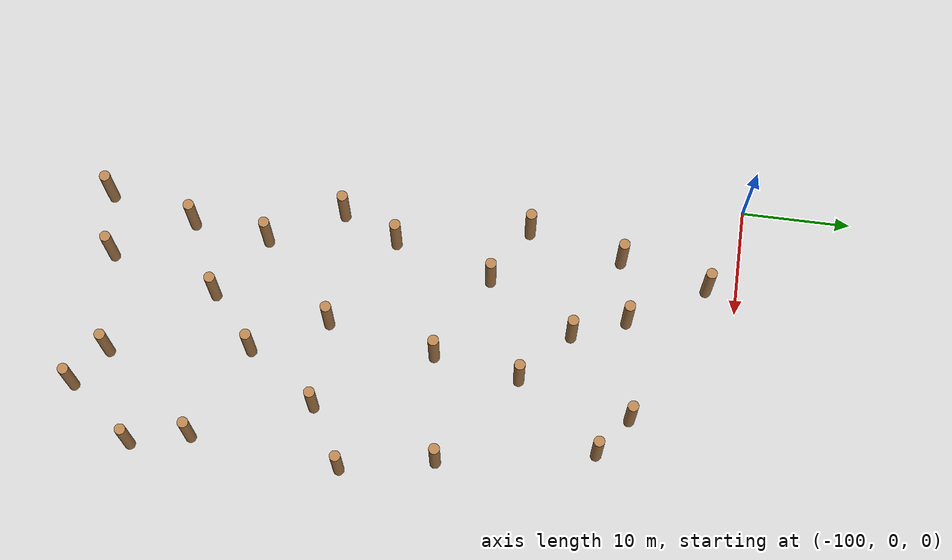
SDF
<sdf version="1.6">
 <world name="default">
  <model name="ground_plane">
   <static>1</static>
   <link name="link">
    <collision name="collision">
     <geometry><plane><normal>0 0 1</normal><size>100 100</size></plane></geometry>
     <surface><friction><ode><mu>100</mu><mu2>50</mu2></ode></friction></surface>
    </collision>
    <visual name="visual">
     <cast_shadows>0</cast_shadows>
     <geometry><plane><normal>0 0 1</normal><size>100 100</size></plane></geometry>
     <material>
      <script><uri>file://media/materials/scripts/gazebo.material</uri><name>Gazebo/Grey</name></script>
     </material>
    </visual>
   </link>
  </model>
  <model name="WoodPillars_10">
   <link name="link">
    <inertial>
     <mass>1</mass>
     <inertia><ixx>0.145833</ixx><ixy>0</ixy><ixz>0</ixz><iyy>0.145833</iyy><iyz>0</iyz><izz>0.125</izz></inertia>
    </inertial>
    <visual name="visual">
     <geometry><cylinder><radius>0.5</radius><length>5.50507</length></cylinder></geometry>
     <material>
      <script><name>Gazebo/Wood</name><uri>file://media/materials/scripts/gazebo.material</uri></script>
     </material>
    </visual>
    <collision name="collision">
     <geometry><cylinder><radius>0.5</radius><length>5.50507</length></cylinder></geometry>
     <surface>
      <friction>
       <ode><mu>1</mu><mu2>1</mu2><fdir1>0 0 0</fdir1><slip1>0</slip1><slip2>0</slip2></ode>
       <torsional>
        <coefficient>1</coefficient>
        <patch_radius>0</patch_radius>
        <surface_radius>0</surface_radius>
        <use_patch_radius>1</use_patch_radius>
        <ode><slip>0</slip></ode>
       </torsional>
      </friction>
      <bounce><restitution_coefficient>0</restitution_coefficient><threshold>1e+06</threshold></bounce>
      <contact>
       <collide_without_contact>0</collide_without_contact>
       <collide_without_contact_bitmask>1</collide_without_contact_bitmask>
       <collide_bitmask>1</collide_bitmask>
       <ode>
        <soft_cfm>0</soft_cfm>
        <soft_erp>0.2</soft_erp>
        <kp>1e+13</kp>
        <kd>1</kd>
        <max_vel>0.01</max_vel>
        <min_depth>0</min_depth>
       </ode>
       <bullet>
        <split_impulse>1</split_impulse>
        <split_impulse_penetration_threshold>-0.01</split_impulse_penetration_threshold>
        <soft_cfm>0</soft_cfm>
        <soft_erp>0.2</soft_erp>
        <kp>1e+13</kp>
        <kd>1</kd>
       </bullet>
      </contact>
     </surface>
    </collision>
   </link>
   <link name="link_clone">
    <inertial>
     <mass>1</mass>
     <inertia><ixx>0.145833</ixx><ixy>0</ixy><ixz>0</ixz><iyy>0.145833</iyy><iyz>0</iyz><izz>0.125</izz></inertia>
    </inertial>
    <pose>17.6954 -2.91348 -2e-06 0 -0 -0.001289</pose>
    <visual name="visual">
     <geometry><cylinder><radius>0.5</radius><length>5.50507</length></cylinder></geometry>
     <material>
      <script><name>Gazebo/Wood</name><uri>file://media/materials/scripts/gazebo.material</uri></script>
      <shader type="pixel"/>
     </material>
    </visual>
    <collision name="collision">
     <geometry><cylinder><radius>0.5</radius><length>5.50507</length></cylinder></geometry>
     <surface>
      <friction>
       <ode><mu>1</mu><mu2>1</mu2><fdir1>0 0 0</fdir1><slip1>0</slip1><slip2>0</slip2></ode>
       <torsional>
        <coefficient>1</coefficient>
        <patch_radius>0</patch_radius>
        <surface_radius>0</surface_radius>
        <use_patch_radius>1</use_patch_radius>
        <ode><slip>0</slip></ode>
       </torsional>
      </friction>
      <bounce><restitution_coefficient>0</restitution_coefficient><threshold>1e+06</threshold></bounce>
      <contact>
       <collide_without_contact>0</collide_without_contact>
       <collide_without_contact_bitmask>1</collide_without_contact_bitmask>
       <collide_bitmask>1</collide_bitmask>
       <ode>
        <soft_cfm>0</soft_cfm>
        <soft_erp>0.2</soft_erp>
        <kp>1e+13</kp>
        <kd>1</kd>
        <max_vel>0.01</max_vel>
        <min_depth>0</min_depth>
       </ode>
       <bullet>
        <split_impulse>1</split_impulse>
        <split_impulse_penetration_threshold>-0.01</split_impulse_penetration_threshold>
        <soft_cfm>0</soft_cfm>
        <soft_erp>0.2</soft_erp>
        <kp>1e+13</kp>
        <kd>1</kd>
       </bullet>
      </contact>
     </surface>
    </collision>
   </link>
   <link name="link_clone_10">
    <inertial>
     <mass>1</mass>
     <inertia><ixx>0.145833</ixx><ixy>0</ixy><ixz>0</ixz><iyy>0.145833</iyy><iyz>0</iyz><izz>0.125</izz></inertia>
    </inertial>
    <pose>2.50237 12.8939 0 0 -0 -0.001289</pose>
    <visual name="visual">
     <geometry><cylinder><radius>0.5</radius><length>5.50507</length></cylinder></geometry>
     <material>
      <script><name>Gazebo/Wood</name><uri>file://media/materials/scripts/gazebo.material</uri></script>
      <shader type="pixel"/>
     </material>
    </visual>
    <collision name="collision">
     <geometry><cylinder><radius>0.5</radius><length>5.50507</length></cylinder></geometry>
     <surface>
      <friction>
       <ode><mu>1</mu><mu2>1</mu2><fdir1>0 0 0</fdir1><slip1>0</slip1><slip2>0</slip2></ode>
       <torsional>
        <coefficient>1</coefficient>
        <patch_radius>0</patch_radius>
        <surface_radius>0</surface_radius>
        <use_patch_radius>1</use_patch_radius>
        <ode><slip>0</slip></ode>
       </torsional>
      </friction>
      <bounce><restitution_coefficient>0</restitution_coefficient><threshold>1e+06</threshold></bounce>
      <contact>
       <collide_without_contact>0</collide_without_contact>
       <collide_without_contact_bitmask>1</collide_without_contact_bitmask>
       <collide_bitmask>1</collide_bitmask>
       <ode>
        <soft_cfm>0</soft_cfm>
        <soft_erp>0.2</soft_erp>
        <kp>1e+13</kp>
        <kd>1</kd>
        <max_vel>0.01</max_vel>
        <min_depth>0</min_depth>
       </ode>
       <bullet>
        <split_impulse>1</split_impulse>
        <split_impulse_penetration_threshold>-0.01</split_impulse_penetration_threshold>
        <soft_cfm>0</soft_cfm>
        <soft_erp>0.2</soft_erp>
        <kp>1e+13</kp>
        <kd>1</kd>
       </bullet>
      </contact>
     </surface>
    </collision>
   </link>
   <link name="link_clone_14">
    <inertial>
     <mass>1</mass>
     <inertia><ixx>0.145833</ixx><ixy>0</ixy><ixz>0</ixz><iyy>0.145833</iyy><iyz>0</iyz><izz>0.125</izz></inertia>
    </inertial>
    <pose>9.31461 -20.9997 -1e-06 0 -0 -0.001289</pose>
    <visual name="visual">
     <geometry><cylinder><radius>0.5</radius><length>5.50507</length></cylinder></geometry>
     <material>
      <script><name>Gazebo/Wood</name><uri>file://media/materials/scripts/gazebo.material</uri></script>
      <shader type="pixel"/>
     </material>
    </visual>
    <collision name="collision">
     <geometry><cylinder><radius>0.5</radius><length>5.50507</length></cylinder></geometry>
     <surface>
      <friction>
       <ode><mu>1</mu><mu2>1</mu2><fdir1>0 0 0</fdir1><slip1>0</slip1><slip2>0</slip2></ode>
       <torsional>
        <coefficient>1</coefficient>
        <patch_radius>0</patch_radius>
        <surface_radius>0</surface_radius>
        <use_patch_radius>1</use_patch_radius>
        <ode><slip>0</slip></ode>
       </torsional>
      </friction>
      <bounce><restitution_coefficient>0</restitution_coefficient><threshold>1e+06</threshold></bounce>
      <contact>
       <collide_without_contact>0</collide_without_contact>
       <collide_without_contact_bitmask>1</collide_without_contact_bitmask>
       <collide_bitmask>1</collide_bitmask>
       <ode>
        <soft_cfm>0</soft_cfm>
        <soft_erp>0.2</soft_erp>
        <kp>1e+13</kp>
        <kd>1</kd>
        <max_vel>0.01</max_vel>
        <min_depth>0</min_depth>
       </ode>
       <bullet>
        <split_impulse>1</split_impulse>
        <split_impulse_penetration_threshold>-0.01</split_impulse_penetration_threshold>
        <soft_cfm>0</soft_cfm>
        <soft_erp>0.2</soft_erp>
        <kp>1e+13</kp>
        <kd>1</kd>
       </bullet>
      </contact>
     </surface>
    </collision>
   </link>
   <link name="link_clone_15">
    <inertial>
     <mass>1</mass>
     <inertia><ixx>0.145833</ixx><ixy>0</ixy><ixz>0</ixz><iyy>0.145833</iyy><iyz>0</iyz><izz>0.125</izz></inertia>
    </inertial>
    <pose>17.9894 -25.1945 -2e-06 0 -0 -0.001289</pose>
    <visual name="visual">
     <geometry><cylinder><radius>0.5</radius><length>5.50507</length></cylinder></geometry>
     <material>
      <script><name>Gazebo/Wood</name><uri>file://media/materials/scripts/gazebo.material</uri></script>
      <shader type="pixel"/>
     </material>
    </visual>
    <collision name="collision">
     <geometry><cylinder><radius>0.5</radius><length>5.50507</length></cylinder></geometry>
     <surface>
      <friction>
       <ode><mu>1</mu><mu2>1</mu2><fdir1>0 0 0</fdir1><slip1>0</slip1><slip2>0</slip2></ode>
       <torsional>
        <coefficient>1</coefficient>
        <patch_radius>0</patch_radius>
        <surface_radius>0</surface_radius>
        <use_patch_radius>1</use_patch_radius>
        <ode><slip>0</slip></ode>
       </torsional>
      </friction>
      <bounce><restitution_coefficient>0</restitution_coefficient><threshold>1e+06</threshold></bounce>
      <contact>
       <collide_without_contact>0</collide_without_contact>
       <collide_without_contact_bitmask>1</collide_without_contact_bitmask>
       <collide_bitmask>1</collide_bitmask>
       <ode>
        <soft_cfm>0</soft_cfm>
        <soft_erp>0.2</soft_erp>
        <kp>1e+13</kp>
        <kd>1</kd>
        <max_vel>0.01</max_vel>
        <min_depth>0</min_depth>
       </ode>
       <bullet>
        <split_impulse>1</split_impulse>
        <split_impulse_penetration_threshold>-0.01</split_impulse_penetration_threshold>
        <soft_cfm>0</soft_cfm>
        <soft_erp>0.2</soft_erp>
        <kp>1e+13</kp>
        <kd>1</kd>
       </bullet>
      </contact>
     </surface>
    </collision>
   </link>
   <link name="link_clone_17">
    <inertial>
     <mass>1</mass>
     <inertia><ixx>0.145833</ixx><ixy>0</ixy><ixz>0</ixz><iyy>0.145833</iyy><iyz>0</iyz><izz>0.125</izz></inertia>
    </inertial>
    <pose>19.3784 -11.4604 -2e-06 0 -0 -0.001289</pose>
    <visual name="visual">
     <geometry><cylinder><radius>0.5</radius><length>5.50507</length></cylinder></geometry>
     <material>
      <script><name>Gazebo/Wood</name><uri>file://media/materials/scripts/gazebo.material</uri></script>
      <shader type="pixel"/>
     </material>
    </visual>
    <collision name="collision">
     <geometry><cylinder><radius>0.5</radius><length>5.50507</length></cylinder></geometry>
     <surface>
      <friction>
       <ode><mu>1</mu><mu2>1</mu2><fdir1>0 0 0</fdir1><slip1>0</slip1><slip2>0</slip2></ode>
       <torsional>
        <coefficient>1</coefficient>
        <patch_radius>0</patch_radius>
        <surface_radius>0</surface_radius>
        <use_patch_radius>1</use_patch_radius>
        <ode><slip>0</slip></ode>
       </torsional>
      </friction>
      <bounce><restitution_coefficient>0</restitution_coefficient><threshold>1e+06</threshold></bounce>
      <contact>
       <collide_without_contact>0</collide_without_contact>
       <collide_without_contact_bitmask>1</collide_without_contact_bitmask>
       <collide_bitmask>1</collide_bitmask>
       <ode>
        <soft_cfm>0</soft_cfm>
        <soft_erp>0.2</soft_erp>
        <kp>1e+13</kp>
        <kd>1</kd>
        <max_vel>0.01</max_vel>
        <min_depth>0</min_depth>
       </ode>
       <bullet>
        <split_impulse>1</split_impulse>
        <split_impulse_penetration_threshold>-0.01</split_impulse_penetration_threshold>
        <soft_cfm>0</soft_cfm>
        <soft_erp>0.2</soft_erp>
        <kp>1e+13</kp>
        <kd>1</kd>
       </bullet>
      </contact>
     </surface>
    </collision>
   </link>
   <link name="link_clone_18">
    <inertial>
     <mass>1</mass>
     <inertia><ixx>0.145833</ixx><ixy>0</ixy><ixz>0</ixz><iyy>0.145833</iyy><iyz>0</iyz><izz>0.125</izz></inertia>
    </inertial>
    <pose>9.1573 3.67739 -1e-06 0 -0 -0.001289</pose>
    <visual name="visual">
     <geometry><cylinder><radius>0.5</radius><length>5.50507</length></cylinder></geometry>
     <material>
      <script><name>Gazebo/Wood</name><uri>file://media/materials/scripts/gazebo.material</uri></script>
      <shader type="pixel"/>
     </material>
    </visual>
    <collision name="collision">
     <geometry><cylinder><radius>0.5</radius><length>5.50507</length></cylinder></geometry>
     <surface>
      <friction>
       <ode><mu>1</mu><mu2>1</mu2><fdir1>0 0 0</fdir1><slip1>0</slip1><slip2>0</slip2></ode>
       <torsional>
        <coefficient>1</coefficient>
        <patch_radius>0</patch_radius>
        <surface_radius>0</surface_radius>
        <use_patch_radius>1</use_patch_radius>
        <ode><slip>0</slip></ode>
       </torsional>
      </friction>
      <bounce><restitution_coefficient>0</restitution_coefficient><threshold>1e+06</threshold></bounce>
      <contact>
       <collide_without_contact>0</collide_without_contact>
       <collide_without_contact_bitmask>1</collide_without_contact_bitmask>
       <collide_bitmask>1</collide_bitmask>
       <ode>
        <soft_cfm>0</soft_cfm>
        <soft_erp>0.2</soft_erp>
        <kp>1e+13</kp>
        <kd>1</kd>
        <max_vel>0.01</max_vel>
        <min_depth>0</min_depth>
       </ode>
       <bullet>
        <split_impulse>1</split_impulse>
        <split_impulse_penetration_threshold>-0.01</split_impulse_penetration_threshold>
        <soft_cfm>0</soft_cfm>
        <soft_erp>0.2</soft_erp>
        <kp>1e+13</kp>
        <kd>1</kd>
       </bullet>
      </contact>
     </surface>
    </collision>
   </link>
   <link name="link_clone_19">
    <inertial>
     <mass>1</mass>
     <inertia><ixx>0.145833</ixx><ixy>0</ixy><ixz>0</ixz><iyy>0.145833</iyy><iyz>0</iyz><izz>0.125</izz></inertia>
    </inertial>
    <pose>-3.28611 11.8265 -0 0 -0 -0.001289</pose>
    <visual name="visual">
     <geometry><cylinder><radius>0.5</radius><length>5.50507</length></cylinder></geometry>
     <material>
      <script><name>Gazebo/Wood</name><uri>file://media/materials/scripts/gazebo.material</uri></script>
      <shader type="pixel"/>
     </material>
    </visual>
    <collision name="collision">
     <geometry><cylinder><radius>0.5</radius><length>5.50507</length></cylinder></geometry>
     <surface>
      <friction>
       <ode><mu>1</mu><mu2>1</mu2><fdir1>0 0 0</fdir1><slip1>0</slip1><slip2>0</slip2></ode>
       <torsional>
        <coefficient>1</coefficient>
        <patch_radius>0</patch_radius>
        <surface_radius>0</surface_radius>
        <use_patch_radius>1</use_patch_radius>
        <ode><slip>0</slip></ode>
       </torsional>
      </friction>
      <bounce><restitution_coefficient>0</restitution_coefficient><threshold>1e+06</threshold></bounce>
      <contact>
       <collide_without_contact>0</collide_without_contact>
       <collide_without_contact_bitmask>1</collide_without_contact_bitmask>
       <collide_bitmask>1</collide_bitmask>
       <ode>
        <soft_cfm>0</soft_cfm>
        <soft_erp>0.2</soft_erp>
        <kp>1e+13</kp>
        <kd>1</kd>
        <max_vel>0.01</max_vel>
        <min_depth>0</min_depth>
       </ode>
       <bullet>
        <split_impulse>1</split_impulse>
        <split_impulse_penetration_threshold>-0.01</split_impulse_penetration_threshold>
        <soft_cfm>0</soft_cfm>
        <soft_erp>0.2</soft_erp>
        <kp>1e+13</kp>
        <kd>1</kd>
       </bullet>
      </contact>
     </surface>
    </collision>
   </link>
   <link name="link_clone_20">
    <inertial>
     <mass>1</mass>
     <inertia><ixx>0.145833</ixx><ixy>0</ixy><ixz>0</ixz><iyy>0.145833</iyy><iyz>0</iyz><izz>0.125</izz></inertia>
    </inertial>
    <pose>-2.64423 -9.12396 -0 0 -0 -0.001289</pose>
    <visual name="visual">
     <geometry><cylinder><radius>0.5</radius><length>5.50507</length></cylinder></geometry>
     <material>
      <script><name>Gazebo/Wood</name><uri>file://media/materials/scripts/gazebo.material</uri></script>
      <shader type="pixel"/>
     </material>
    </visual>
    <collision name="collision">
     <geometry><cylinder><radius>0.5</radius><length>5.50507</length></cylinder></geometry>
     <surface>
      <friction>
       <ode><mu>1</mu><mu2>1</mu2><fdir1>0 0 0</fdir1><slip1>0</slip1><slip2>0</slip2></ode>
       <torsional>
        <coefficient>1</coefficient>
        <patch_radius>0</patch_radius>
        <surface_radius>0</surface_radius>
        <use_patch_radius>1</use_patch_radius>
        <ode><slip>0</slip></ode>
       </torsional>
      </friction>
      <bounce><restitution_coefficient>0</restitution_coefficient><threshold>1e+06</threshold></bounce>
      <contact>
       <collide_without_contact>0</collide_without_contact>
       <collide_without_contact_bitmask>1</collide_without_contact_bitmask>
       <collide_bitmask>1</collide_bitmask>
       <ode>
        <soft_cfm>0</soft_cfm>
        <soft_erp>0.2</soft_erp>
        <kp>1e+13</kp>
        <kd>1</kd>
        <max_vel>0.01</max_vel>
        <min_depth>0</min_depth>
       </ode>
       <bullet>
        <split_impulse>1</split_impulse>
        <split_impulse_penetration_threshold>-0.01</split_impulse_penetration_threshold>
        <soft_cfm>0</soft_cfm>
        <soft_erp>0.2</soft_erp>
        <kp>1e+13</kp>
        <kd>1</kd>
       </bullet>
      </contact>
     </surface>
    </collision>
   </link>
   <link name="link_clone_21">
    <inertial>
     <mass>1</mass>
     <inertia><ixx>0.145833</ixx><ixy>0</ixy><ixz>0</ixz><iyy>0.145833</iyy><iyz>0</iyz><izz>0.125</izz></inertia>
    </inertial>
    <pose>15.2748 11.406 -1e-06 0 -0 -0.001289</pose>
    <visual name="visual">
     <geometry><cylinder><radius>0.5</radius><length>5.50507</length></cylinder></geometry>
     <material>
      <script><name>Gazebo/Wood</name><uri>file://media/materials/scripts/gazebo.material</uri></script>
      <shader type="pixel"/>
     </material>
    </visual>
    <collision name="collision">
     <geometry><cylinder><radius>0.5</radius><length>5.50507</length></cylinder></geometry>
     <surface>
      <friction>
       <ode><mu>1</mu><mu2>1</mu2><fdir1>0 0 0</fdir1><slip1>0</slip1><slip2>0</slip2></ode>
       <torsional>
        <coefficient>1</coefficient>
        <patch_radius>0</patch_radius>
        <surface_radius>0</surface_radius>
        <use_patch_radius>1</use_patch_radius>
        <ode><slip>0</slip></ode>
       </torsional>
      </friction>
      <bounce><restitution_coefficient>0</restitution_coefficient><threshold>1e+06</threshold></bounce>
      <contact>
       <collide_without_contact>0</collide_without_contact>
       <collide_without_contact_bitmask>1</collide_without_contact_bitmask>
       <collide_bitmask>1</collide_bitmask>
       <ode>
        <soft_cfm>0</soft_cfm>
        <soft_erp>0.2</soft_erp>
        <kp>1e+13</kp>
        <kd>1</kd>
        <max_vel>0.01</max_vel>
        <min_depth>0</min_depth>
       </ode>
       <bullet>
        <split_impulse>1</split_impulse>
        <split_impulse_penetration_threshold>-0.01</split_impulse_penetration_threshold>
        <soft_cfm>0</soft_cfm>
        <soft_erp>0.2</soft_erp>
        <kp>1e+13</kp>
        <kd>1</kd>
       </bullet>
      </contact>
     </surface>
    </collision>
   </link>
   <link name="link_clone_24">
    <inertial>
     <mass>1</mass>
     <inertia><ixx>0.145833</ixx><ixy>0</ixy><ixz>0</ixz><iyy>0.145833</iyy><iyz>0</iyz><izz>0.125</izz></inertia>
    </inertial>
    <pose>7.84688 -4.26113 -1e-06 0 -0 -0.001289</pose>
    <visual name="visual">
     <geometry><cylinder><radius>0.5</radius><length>5.50507</length></cylinder></geometry>
     <material>
      <script><name>Gazebo/Wood</name><uri>file://media/materials/scripts/gazebo.material</uri></script>
      <shader type="pixel"/>
     </material>
    </visual>
    <collision name="collision">
     <geometry><cylinder><radius>0.5</radius><length>5.50507</length></cylinder></geometry>
     <surface>
      <friction>
       <ode><mu>1</mu><mu2>1</mu2><fdir1>0 0 0</fdir1><slip1>0</slip1><slip2>0</slip2></ode>
       <torsional>
        <coefficient>1</coefficient>
        <patch_radius>0</patch_radius>
        <surface_radius>0</surface_radius>
        <use_patch_radius>1</use_patch_radius>
        <ode><slip>0</slip></ode>
       </torsional>
      </friction>
      <bounce><restitution_coefficient>0</restitution_coefficient><threshold>1e+06</threshold></bounce>
      <contact>
       <collide_without_contact>0</collide_without_contact>
       <collide_without_contact_bitmask>1</collide_without_contact_bitmask>
       <collide_bitmask>1</collide_bitmask>
       <ode>
        <soft_cfm>0</soft_cfm>
        <soft_erp>0.2</soft_erp>
        <kp>1e+13</kp>
        <kd>1</kd>
        <max_vel>0.01</max_vel>
        <min_depth>0</min_depth>
       </ode>
       <bullet>
        <split_impulse>1</split_impulse>
        <split_impulse_penetration_threshold>-0.01</split_impulse_penetration_threshold>
        <soft_cfm>0</soft_cfm>
        <soft_erp>0.2</soft_erp>
        <kp>1e+13</kp>
        <kd>1</kd>
       </bullet>
      </contact>
     </surface>
    </collision>
   </link>
   <link name="link_clone_25">
    <inertial>
     <mass>1</mass>
     <inertia><ixx>0.145833</ixx><ixy>0</ixy><ixz>0</ixz><iyy>0.145833</iyy><iyz>0</iyz><izz>0.125</izz></inertia>
    </inertial>
    <pose>11.7271 14.0632 -1e-06 0 -0 -0.001289</pose>
    <visual name="visual">
     <geometry><cylinder><radius>0.5</radius><length>5.50507</length></cylinder></geometry>
     <material>
      <script><name>Gazebo/Wood</name><uri>file://media/materials/scripts/gazebo.material</uri></script>
      <shader type="pixel"/>
     </material>
    </visual>
    <collision name="collision">
     <geometry><cylinder><radius>0.5</radius><length>5.50507</length></cylinder></geometry>
     <surface>
      <friction>
       <ode><mu>1</mu><mu2>1</mu2><fdir1>0 0 0</fdir1><slip1>0</slip1><slip2>0</slip2></ode>
       <torsional>
        <coefficient>1</coefficient>
        <patch_radius>0</patch_radius>
        <surface_radius>0</surface_radius>
        <use_patch_radius>1</use_patch_radius>
        <ode><slip>0</slip></ode>
       </torsional>
      </friction>
      <bounce><restitution_coefficient>0</restitution_coefficient><threshold>1e+06</threshold></bounce>
      <contact>
       <collide_without_contact>0</collide_without_contact>
       <collide_without_contact_bitmask>1</collide_without_contact_bitmask>
       <collide_bitmask>1</collide_bitmask>
       <ode>
        <soft_cfm>0</soft_cfm>
        <soft_erp>0.2</soft_erp>
        <kp>1e+13</kp>
        <kd>1</kd>
        <max_vel>0.01</max_vel>
        <min_depth>0</min_depth>
       </ode>
       <bullet>
        <split_impulse>1</split_impulse>
        <split_impulse_penetration_threshold>-0.01</split_impulse_penetration_threshold>
        <soft_cfm>0</soft_cfm>
        <soft_erp>0.2</soft_erp>
        <kp>1e+13</kp>
        <kd>1</kd>
       </bullet>
      </contact>
     </surface>
    </collision>
   </link>
   <link name="link_clone_26">
    <inertial>
     <mass>1</mass>
     <inertia><ixx>0.145833</ixx><ixy>0</ixy><ixz>0</ixz><iyy>0.145833</iyy><iyz>0</iyz><izz>0.125</izz></inertia>
    </inertial>
    <pose>13.9187 -14.5508 -1e-06 0 -0 -0.001289</pose>
    <visual name="visual">
     <geometry><cylinder><radius>0.5</radius><length>5.50507</length></cylinder></geometry>
     <material>
      <script><name>Gazebo/Wood</name><uri>file://media/materials/scripts/gazebo.material</uri></script>
      <shader type="pixel"/>
     </material>
    </visual>
    <collision name="collision">
     <geometry><cylinder><radius>0.5</radius><length>5.50507</length></cylinder></geometry>
     <surface>
      <friction>
       <ode><mu>1</mu><mu2>1</mu2><fdir1>0 0 0</fdir1><slip1>0</slip1><slip2>0</slip2></ode>
       <torsional>
        <coefficient>1</coefficient>
        <patch_radius>0</patch_radius>
        <surface_radius>0</surface_radius>
        <use_patch_radius>1</use_patch_radius>
        <ode><slip>0</slip></ode>
       </torsional>
      </friction>
      <bounce><restitution_coefficient>0</restitution_coefficient><threshold>1e+06</threshold></bounce>
      <contact>
       <collide_without_contact>0</collide_without_contact>
       <collide_without_contact_bitmask>1</collide_without_contact_bitmask>
       <collide_bitmask>1</collide_bitmask>
       <ode>
        <soft_cfm>0</soft_cfm>
        <soft_erp>0.2</soft_erp>
        <kp>1e+13</kp>
        <kd>1</kd>
        <max_vel>0.01</max_vel>
        <min_depth>0</min_depth>
       </ode>
       <bullet>
        <split_impulse>1</split_impulse>
        <split_impulse_penetration_threshold>-0.01</split_impulse_penetration_threshold>
        <soft_cfm>0</soft_cfm>
        <soft_erp>0.2</soft_erp>
        <kp>1e+13</kp>
        <kd>1</kd>
       </bullet>
      </contact>
     </surface>
    </collision>
   </link>
   <link name="link_clone_27">
    <inertial>
     <mass>1</mass>
     <inertia><ixx>0.145833</ixx><ixy>0</ixy><ixz>0</ixz><iyy>0.145833</iyy><iyz>0</iyz><izz>0.125</izz></inertia>
    </inertial>
    <pose>4.38632 -25.0605 -1e-06 0 -0 -0.001289</pose>
    <visual name="visual">
     <geometry><cylinder><radius>0.5</radius><length>5.50507</length></cylinder></geometry>
     <material>
      <script><name>Gazebo/Wood</name><uri>file://media/materials/scripts/gazebo.material</uri></script>
      <shader type="pixel"/>
     </material>
    </visual>
    <collision name="collision">
     <geometry><cylinder><radius>0.5</radius><length>5.50507</length></cylinder></geometry>
     <surface>
      <friction>
       <ode><mu>1</mu><mu2>1</mu2><fdir1>0 0 0</fdir1><slip1>0</slip1><slip2>0</slip2></ode>
       <torsional>
        <coefficient>1</coefficient>
        <patch_radius>0</patch_radius>
        <surface_radius>0</surface_radius>
        <use_patch_radius>1</use_patch_radius>
        <ode><slip>0</slip></ode>
       </torsional>
      </friction>
      <bounce><restitution_coefficient>0</restitution_coefficient><threshold>1e+06</threshold></bounce>
      <contact>
       <collide_without_contact>0</collide_without_contact>
       <collide_without_contact_bitmask>1</collide_without_contact_bitmask>
       <collide_bitmask>1</collide_bitmask>
       <ode>
        <soft_cfm>0</soft_cfm>
        <soft_erp>0.2</soft_erp>
        <kp>1e+13</kp>
        <kd>1</kd>
        <max_vel>0.01</max_vel>
        <min_depth>0</min_depth>
       </ode>
       <bullet>
        <split_impulse>1</split_impulse>
        <split_impulse_penetration_threshold>-0.01</split_impulse_penetration_threshold>
        <soft_cfm>0</soft_cfm>
        <soft_erp>0.2</soft_erp>
        <kp>1e+13</kp>
        <kd>1</kd>
       </bullet>
      </contact>
     </surface>
    </collision>
   </link>
   <link name="link_clone_30">
    <inertial>
     <mass>1</mass>
     <inertia><ixx>0.145833</ixx><ixy>0</ixy><ixz>0</ixz><iyy>0.145833</iyy><iyz>0</iyz><izz>0.125</izz></inertia>
    </inertial>
    <pose>4.46339 7.97492 0 0 -0 -0.001289</pose>
    <visual name="visual">
     <geometry><cylinder><radius>0.5</radius><length>5.50507</length></cylinder></geometry>
     <material>
      <script><name>Gazebo/Wood</name><uri>file://media/materials/scripts/gazebo.material</uri></script>
      <shader type="pixel"/>
     </material>
    </visual>
    <collision name="collision">
     <geometry><cylinder><radius>0.5</radius><length>5.50507</length></cylinder></geometry>
     <surface>
      <friction>
       <ode><mu>1</mu><mu2>1</mu2><fdir1>0 0 0</fdir1><slip1>0</slip1><slip2>0</slip2></ode>
       <torsional>
        <coefficient>1</coefficient>
        <patch_radius>0</patch_radius>
        <surface_radius>0</surface_radius>
        <use_patch_radius>1</use_patch_radius>
        <ode><slip>0</slip></ode>
       </torsional>
      </friction>
      <bounce><restitution_coefficient>0</restitution_coefficient><threshold>1e+06</threshold></bounce>
      <contact>
       <collide_without_contact>0</collide_without_contact>
       <collide_without_contact_bitmask>1</collide_without_contact_bitmask>
       <collide_bitmask>1</collide_bitmask>
       <ode>
        <soft_cfm>0</soft_cfm>
        <soft_erp>0.2</soft_erp>
        <kp>1e+13</kp>
        <kd>1</kd>
        <max_vel>0.01</max_vel>
        <min_depth>0</min_depth>
       </ode>
       <bullet>
        <split_impulse>1</split_impulse>
        <split_impulse_penetration_threshold>-0.01</split_impulse_penetration_threshold>
        <soft_cfm>0</soft_cfm>
        <soft_erp>0.2</soft_erp>
        <kp>1e+13</kp>
        <kd>1</kd>
       </bullet>
      </contact>
     </surface>
    </collision>
   </link>
   <link name="link_clone_31">
    <inertial>
     <mass>1</mass>
     <inertia><ixx>0.145833</ixx><ixy>0</ixy><ixz>0</ixz><iyy>0.145833</iyy><iyz>0</iyz><izz>0.125</izz></inertia>
    </inertial>
    <pose>-1.44135 19.9016 0 0 -0 -0.001289</pose>
    <visual name="visual">
     <geometry><cylinder><radius>0.5</radius><length>5.50507</length></cylinder></geometry>
     <material>
      <script><name>Gazebo/Wood</name><uri>file://media/materials/scripts/gazebo.material</uri></script>
      <shader type="pixel"/>
     </material>
    </visual>
    <collision name="collision">
     <geometry><cylinder><radius>0.5</radius><length>5.50507</length></cylinder></geometry>
     <surface>
      <friction>
       <ode><mu>1</mu><mu2>1</mu2><fdir1>0 0 0</fdir1><slip1>0</slip1><slip2>0</slip2></ode>
       <torsional>
        <coefficient>1</coefficient>
        <patch_radius>0</patch_radius>
        <surface_radius>0</surface_radius>
        <use_patch_radius>1</use_patch_radius>
        <ode><slip>0</slip></ode>
       </torsional>
      </friction>
      <bounce><restitution_coefficient>0</restitution_coefficient><threshold>1e+06</threshold></bounce>
      <contact>
       <collide_without_contact>0</collide_without_contact>
       <collide_without_contact_bitmask>1</collide_without_contact_bitmask>
       <collide_bitmask>1</collide_bitmask>
       <ode>
        <soft_cfm>0</soft_cfm>
        <soft_erp>0.2</soft_erp>
        <kp>1e+13</kp>
        <kd>1</kd>
        <max_vel>0.01</max_vel>
        <min_depth>0</min_depth>
       </ode>
       <bullet>
        <split_impulse>1</split_impulse>
        <split_impulse_penetration_threshold>-0.01</split_impulse_penetration_threshold>
        <soft_cfm>0</soft_cfm>
        <soft_erp>0.2</soft_erp>
        <kp>1e+13</kp>
        <kd>1</kd>
       </bullet>
      </contact>
     </surface>
    </collision>
   </link>
   <link name="link_clone_32">
    <inertial>
     <mass>1</mass>
     <inertia><ixx>0.145833</ixx><ixy>0</ixy><ixz>0</ixz><iyy>0.145833</iyy><iyz>0</iyz><izz>0.125</izz></inertia>
    </inertial>
    <pose>-4.82669 -14.2698 -0 0 -0 -0.001289</pose>
    <visual name="visual">
     <geometry><cylinder><radius>0.5</radius><length>5.50507</length></cylinder></geometry>
     <material>
      <script><name>Gazebo/Wood</name><uri>file://media/materials/scripts/gazebo.material</uri></script>
      <shader type="pixel"/>
     </material>
    </visual>
    <collision name="collision">
     <geometry><cylinder><radius>0.5</radius><length>5.50507</length></cylinder></geometry>
     <surface>
      <friction>
       <ode><mu>1</mu><mu2>1</mu2><fdir1>0 0 0</fdir1><slip1>0</slip1><slip2>0</slip2></ode>
       <torsional>
        <coefficient>1</coefficient>
        <patch_radius>0</patch_radius>
        <surface_radius>0</surface_radius>
        <use_patch_radius>1</use_patch_radius>
        <ode><slip>0</slip></ode>
       </torsional>
      </friction>
      <bounce><restitution_coefficient>0</restitution_coefficient><threshold>1e+06</threshold></bounce>
      <contact>
       <collide_without_contact>0</collide_without_contact>
       <collide_without_contact_bitmask>1</collide_without_contact_bitmask>
       <collide_bitmask>1</collide_bitmask>
       <ode>
        <soft_cfm>0</soft_cfm>
        <soft_erp>0.2</soft_erp>
        <kp>1e+13</kp>
        <kd>1</kd>
        <max_vel>0.01</max_vel>
        <min_depth>0</min_depth>
       </ode>
       <bullet>
        <split_impulse>1</split_impulse>
        <split_impulse_penetration_threshold>-0.01</split_impulse_penetration_threshold>
        <soft_cfm>0</soft_cfm>
        <soft_erp>0.2</soft_erp>
        <kp>1e+13</kp>
        <kd>1</kd>
       </bullet>
      </contact>
     </surface>
    </collision>
   </link>
   <link name="link_clone_35">
    <inertial>
     <mass>1</mass>
     <inertia><ixx>0.145833</ixx><ixy>0</ixy><ixz>0</ixz><iyy>0.145833</iyy><iyz>0</iyz><izz>0.125</izz></inertia>
    </inertial>
    <pose>-5.14728 3.10998 -0 0 -0 -0.001289</pose>
    <visual name="visual">
     <geometry><cylinder><radius>0.5</radius><length>5.50507</length></cylinder></geometry>
     <material>
      <script><name>Gazebo/Wood</name><uri>file://media/materials/scripts/gazebo.material</uri></script>
      <shader type="pixel"/>
     </material>
    </visual>
    <collision name="collision">
     <geometry><cylinder><radius>0.5</radius><length>5.50507</length></cylinder></geometry>
     <surface>
      <friction>
       <ode><mu>1</mu><mu2>1</mu2><fdir1>0 0 0</fdir1><slip1>0</slip1><slip2>0</slip2></ode>
       <torsional>
        <coefficient>1</coefficient>
        <patch_radius>0</patch_radius>
        <surface_radius>0</surface_radius>
        <use_patch_radius>1</use_patch_radius>
        <ode><slip>0</slip></ode>
       </torsional>
      </friction>
      <bounce><restitution_coefficient>0</restitution_coefficient><threshold>1e+06</threshold></bounce>
      <contact>
       <collide_without_contact>0</collide_without_contact>
       <collide_without_contact_bitmask>1</collide_without_contact_bitmask>
       <collide_bitmask>1</collide_bitmask>
       <ode>
        <soft_cfm>0</soft_cfm>
        <soft_erp>0.2</soft_erp>
        <kp>1e+13</kp>
        <kd>1</kd>
        <max_vel>0.01</max_vel>
        <min_depth>0</min_depth>
       </ode>
       <bullet>
        <split_impulse>1</split_impulse>
        <split_impulse_penetration_threshold>-0.01</split_impulse_penetration_threshold>
        <soft_cfm>0</soft_cfm>
        <soft_erp>0.2</soft_erp>
        <kp>1e+13</kp>
        <kd>1</kd>
       </bullet>
      </contact>
     </surface>
    </collision>
   </link>
   <link name="link_clone_8">
    <inertial>
     <mass>1</mass>
     <inertia><ixx>0.145833</ixx><ixy>0</ixy><ixz>0</ixz><iyy>0.145833</iyy><iyz>0</iyz><izz>0.125</izz></inertia>
    </inertial>
    <pose>5.87636 -14.2578 -1e-06 0 -0 -0.001289</pose>
    <visual name="visual">
     <geometry><cylinder><radius>0.5</radius><length>5.50507</length></cylinder></geometry>
     <material>
      <script><name>Gazebo/Wood</name><uri>file://media/materials/scripts/gazebo.material</uri></script>
      <shader type="pixel"/>
     </material>
    </visual>
    <collision name="collision">
     <geometry><cylinder><radius>0.5</radius><length>5.50507</length></cylinder></geometry>
     <surface>
      <friction>
       <ode><mu>1</mu><mu2>1</mu2><fdir1>0 0 0</fdir1><slip1>0</slip1><slip2>0</slip2></ode>
       <torsional>
        <coefficient>1</coefficient>
        <patch_radius>0</patch_radius>
        <surface_radius>0</surface_radius>
        <use_patch_radius>1</use_patch_radius>
        <ode><slip>0</slip></ode>
       </torsional>
      </friction>
      <bounce><restitution_coefficient>0</restitution_coefficient><threshold>1e+06</threshold></bounce>
      <contact>
       <collide_without_contact>0</collide_without_contact>
       <collide_without_contact_bitmask>1</collide_without_contact_bitmask>
       <collide_bitmask>1</collide_bitmask>
       <ode>
        <soft_cfm>0</soft_cfm>
        <soft_erp>0.2</soft_erp>
        <kp>1e+13</kp>
        <kd>1</kd>
        <max_vel>0.01</max_vel>
        <min_depth>0</min_depth>
       </ode>
       <bullet>
        <split_impulse>1</split_impulse>
        <split_impulse_penetration_threshold>-0.01</split_impulse_penetration_threshold>
        <soft_cfm>0</soft_cfm>
        <soft_erp>0.2</soft_erp>
        <kp>1e+13</kp>
        <kd>1</kd>
       </bullet>
      </contact>
     </surface>
    </collision>
   </link>
   <link name="link_clone_9">
    <inertial>
     <mass>1</mass>
     <inertia><ixx>0.145833</ixx><ixy>0</ixy><ixz>0</ixz><iyy>0.145833</iyy><iyz>0</iyz><izz>0.125</izz></inertia>
    </inertial>
    <pose>-1.43964 -21.0028 0 0 -0 -0.001289</pose>
    <visual name="visual">
     <geometry><cylinder><radius>0.5</radius><length>5.50507</length></cylinder></geometry>
     <material>
      <script><name>Gazebo/Wood</name><uri>file://media/materials/scripts/gazebo.material</uri></script>
      <shader type="pixel"/>
     </material>
    </visual>
    <collision name="collision">
     <geometry><cylinder><radius>0.5</radius><length>5.50507</length></cylinder></geometry>
     <surface>
      <friction>
       <ode><mu>1</mu><mu2>1</mu2><fdir1>0 0 0</fdir1><slip1>0</slip1><slip2>0</slip2></ode>
       <torsional>
        <coefficient>1</coefficient>
        <patch_radius>0</patch_radius>
        <surface_radius>0</surface_radius>
        <use_patch_radius>1</use_patch_radius>
        <ode><slip>0</slip></ode>
       </torsional>
      </friction>
      <bounce><restitution_coefficient>0</restitution_coefficient><threshold>1e+06</threshold></bounce>
      <contact>
       <collide_without_contact>0</collide_without_contact>
       <collide_without_contact_bitmask>1</collide_without_contact_bitmask>
       <collide_bitmask>1</collide_bitmask>
       <ode>
        <soft_cfm>0</soft_cfm>
        <soft_erp>0.2</soft_erp>
        <kp>1e+13</kp>
        <kd>1</kd>
        <max_vel>0.01</max_vel>
        <min_depth>0</min_depth>
       </ode>
       <bullet>
        <split_impulse>1</split_impulse>
        <split_impulse_penetration_threshold>-0.01</split_impulse_penetration_threshold>
        <soft_cfm>0</soft_cfm>
        <soft_erp>0.2</soft_erp>
        <kp>1e+13</kp>
        <kd>1</kd>
       </bullet>
      </contact>
     </surface>
    </collision>
   </link>
   <static>0</static>
   <pose>-90.3476 -22.7521 2.75253 0 -0 0.001485</pose>
  </model>
  <model name="WoodPillars_11">
   <link name="link_clone_10">
    <inertial>
     <mass>1</mass>
     <inertia><ixx>0.145833</ixx><ixy>0</ixy><ixz>0</ixz><iyy>0.145833</iyy><iyz>0</iyz><izz>0.125</izz></inertia>
    </inertial>
    <pose>2.50237 12.8939 0 0 -0 -0.001289</pose>
    <visual name="visual">
     <geometry><cylinder><radius>0.5</radius><length>5.50507</length></cylinder></geometry>
     <material>
      <script><name>Gazebo/Wood</name><uri>file://media/materials/scripts/gazebo.material</uri></script>
      <shader type="pixel"/>
     </material>
    </visual>
    <collision name="collision">
     <geometry><cylinder><radius>0.5</radius><length>5.50507</length></cylinder></geometry>
     <surface>
      <friction>
       <ode><mu>1</mu><mu2>1</mu2><fdir1>0 0 0</fdir1><slip1>0</slip1><slip2>0</slip2></ode>
       <torsional>
        <coefficient>1</coefficient>
        <patch_radius>0</patch_radius>
        <surface_radius>0</surface_radius>
        <use_patch_radius>1</use_patch_radius>
        <ode><slip>0</slip></ode>
       </torsional>
      </friction>
      <bounce><restitution_coefficient>0</restitution_coefficient><threshold>1e+06</threshold></bounce>
      <contact>
       <collide_without_contact>0</collide_without_contact>
       <collide_without_contact_bitmask>1</collide_without_contact_bitmask>
       <collide_bitmask>1</collide_bitmask>
       <ode>
        <soft_cfm>0</soft_cfm>
        <soft_erp>0.2</soft_erp>
        <kp>1e+13</kp>
        <kd>1</kd>
        <max_vel>0.01</max_vel>
        <min_depth>0</min_depth>
       </ode>
       <bullet>
        <split_impulse>1</split_impulse>
        <split_impulse_penetration_threshold>-0.01</split_impulse_penetration_threshold>
        <soft_cfm>0</soft_cfm>
        <soft_erp>0.2</soft_erp>
        <kp>1e+13</kp>
        <kd>1</kd>
       </bullet>
      </contact>
     </surface>
    </collision>
   </link>
   <link name="link_clone_11">
    <inertial>
     <mass>1</mass>
     <inertia><ixx>0.145833</ixx><ixy>0</ixy><ixz>0</ixz><iyy>0.145833</iyy><iyz>0</iyz><izz>0.125</izz></inertia>
    </inertial>
    <pose>20.1245 17.4079 -2e-06 0 -0 -0.001289</pose>
    <visual name="visual">
     <geometry><cylinder><radius>0.5</radius><length>5.50507</length></cylinder></geometry>
     <material>
      <script><name>Gazebo/Wood</name><uri>file://media/materials/scripts/gazebo.material</uri></script>
      <shader type="pixel"/>
     </material>
    </visual>
    <collision name="collision">
     <geometry><cylinder><radius>0.5</radius><length>5.50507</length></cylinder></geometry>
     <surface>
      <friction>
       <ode><mu>1</mu><mu2>1</mu2><fdir1>0 0 0</fdir1><slip1>0</slip1><slip2>0</slip2></ode>
       <torsional>
        <coefficient>1</coefficient>
        <patch_radius>0</patch_radius>
        <surface_radius>0</surface_radius>
        <use_patch_radius>1</use_patch_radius>
        <ode><slip>0</slip></ode>
       </torsional>
      </friction>
      <bounce><restitution_coefficient>0</restitution_coefficient><threshold>1e+06</threshold></bounce>
      <contact>
       <collide_without_contact>0</collide_without_contact>
       <collide_without_contact_bitmask>1</collide_without_contact_bitmask>
       <collide_bitmask>1</collide_bitmask>
       <ode>
        <soft_cfm>0</soft_cfm>
        <soft_erp>0.2</soft_erp>
        <kp>1e+13</kp>
        <kd>1</kd>
        <max_vel>0.01</max_vel>
        <min_depth>0</min_depth>
       </ode>
       <bullet>
        <split_impulse>1</split_impulse>
        <split_impulse_penetration_threshold>-0.01</split_impulse_penetration_threshold>
        <soft_cfm>0</soft_cfm>
        <soft_erp>0.2</soft_erp>
        <kp>1e+13</kp>
        <kd>1</kd>
       </bullet>
      </contact>
     </surface>
    </collision>
   </link>
   <link name="link_clone_19">
    <inertial>
     <mass>1</mass>
     <inertia><ixx>0.145833</ixx><ixy>0</ixy><ixz>0</ixz><iyy>0.145833</iyy><iyz>0</iyz><izz>0.125</izz></inertia>
    </inertial>
    <pose>-3.28611 11.8265 -0 0 -0 -0.001289</pose>
    <visual name="visual">
     <geometry><cylinder><radius>0.5</radius><length>5.50507</length></cylinder></geometry>
     <material>
      <script><name>Gazebo/Wood</name><uri>file://media/materials/scripts/gazebo.material</uri></script>
      <shader type="pixel"/>
     </material>
    </visual>
    <collision name="collision">
     <geometry><cylinder><radius>0.5</radius><length>5.50507</length></cylinder></geometry>
     <surface>
      <friction>
       <ode><mu>1</mu><mu2>1</mu2><fdir1>0 0 0</fdir1><slip1>0</slip1><slip2>0</slip2></ode>
       <torsional>
        <coefficient>1</coefficient>
        <patch_radius>0</patch_radius>
        <surface_radius>0</surface_radius>
        <use_patch_radius>1</use_patch_radius>
        <ode><slip>0</slip></ode>
       </torsional>
      </friction>
      <bounce><restitution_coefficient>0</restitution_coefficient><threshold>1e+06</threshold></bounce>
      <contact>
       <collide_without_contact>0</collide_without_contact>
       <collide_without_contact_bitmask>1</collide_without_contact_bitmask>
       <collide_bitmask>1</collide_bitmask>
       <ode>
        <soft_cfm>0</soft_cfm>
        <soft_erp>0.2</soft_erp>
        <kp>1e+13</kp>
        <kd>1</kd>
        <max_vel>0.01</max_vel>
        <min_depth>0</min_depth>
       </ode>
       <bullet>
        <split_impulse>1</split_impulse>
        <split_impulse_penetration_threshold>-0.01</split_impulse_penetration_threshold>
        <soft_cfm>0</soft_cfm>
        <soft_erp>0.2</soft_erp>
        <kp>1e+13</kp>
        <kd>1</kd>
       </bullet>
      </contact>
     </surface>
    </collision>
   </link>
   <link name="link_clone_21">
    <inertial>
     <mass>1</mass>
     <inertia><ixx>0.145833</ixx><ixy>0</ixy><ixz>0</ixz><iyy>0.145833</iyy><iyz>0</iyz><izz>0.125</izz></inertia>
    </inertial>
    <pose>15.2748 11.406 -1e-06 0 -0 -0.001289</pose>
    <visual name="visual">
     <geometry><cylinder><radius>0.5</radius><length>5.50507</length></cylinder></geometry>
     <material>
      <script><name>Gazebo/Wood</name><uri>file://media/materials/scripts/gazebo.material</uri></script>
      <shader type="pixel"/>
     </material>
    </visual>
    <collision name="collision">
     <geometry><cylinder><radius>0.5</radius><length>5.50507</length></cylinder></geometry>
     <surface>
      <friction>
       <ode><mu>1</mu><mu2>1</mu2><fdir1>0 0 0</fdir1><slip1>0</slip1><slip2>0</slip2></ode>
       <torsional>
        <coefficient>1</coefficient>
        <patch_radius>0</patch_radius>
        <surface_radius>0</surface_radius>
        <use_patch_radius>1</use_patch_radius>
        <ode><slip>0</slip></ode>
       </torsional>
      </friction>
      <bounce><restitution_coefficient>0</restitution_coefficient><threshold>1e+06</threshold></bounce>
      <contact>
       <collide_without_contact>0</collide_without_contact>
       <collide_without_contact_bitmask>1</collide_without_contact_bitmask>
       <collide_bitmask>1</collide_bitmask>
       <ode>
        <soft_cfm>0</soft_cfm>
        <soft_erp>0.2</soft_erp>
        <kp>1e+13</kp>
        <kd>1</kd>
        <max_vel>0.01</max_vel>
        <min_depth>0</min_depth>
       </ode>
       <bullet>
        <split_impulse>1</split_impulse>
        <split_impulse_penetration_threshold>-0.01</split_impulse_penetration_threshold>
        <soft_cfm>0</soft_cfm>
        <soft_erp>0.2</soft_erp>
        <kp>1e+13</kp>
        <kd>1</kd>
       </bullet>
      </contact>
     </surface>
    </collision>
   </link>
   <link name="link_clone_25">
    <inertial>
     <mass>1</mass>
     <inertia><ixx>0.145833</ixx><ixy>0</ixy><ixz>0</ixz><iyy>0.145833</iyy><iyz>0</iyz><izz>0.125</izz></inertia>
    </inertial>
    <pose>11.7271 14.0632 -1e-06 0 -0 -0.001289</pose>
    <visual name="visual">
     <geometry><cylinder><radius>0.5</radius><length>5.50507</length></cylinder></geometry>
     <material>
      <script><name>Gazebo/Wood</name><uri>file://media/materials/scripts/gazebo.material</uri></script>
      <shader type="pixel"/>
     </material>
    </visual>
    <collision name="collision">
     <geometry><cylinder><radius>0.5</radius><length>5.50507</length></cylinder></geometry>
     <surface>
      <friction>
       <ode><mu>1</mu><mu2>1</mu2><fdir1>0 0 0</fdir1><slip1>0</slip1><slip2>0</slip2></ode>
       <torsional>
        <coefficient>1</coefficient>
        <patch_radius>0</patch_radius>
        <surface_radius>0</surface_radius>
        <use_patch_radius>1</use_patch_radius>
        <ode><slip>0</slip></ode>
       </torsional>
      </friction>
      <bounce><restitution_coefficient>0</restitution_coefficient><threshold>1e+06</threshold></bounce>
      <contact>
       <collide_without_contact>0</collide_without_contact>
       <collide_without_contact_bitmask>1</collide_without_contact_bitmask>
       <collide_bitmask>1</collide_bitmask>
       <ode>
        <soft_cfm>0</soft_cfm>
        <soft_erp>0.2</soft_erp>
        <kp>1e+13</kp>
        <kd>1</kd>
        <max_vel>0.01</max_vel>
        <min_depth>0</min_depth>
       </ode>
       <bullet>
        <split_impulse>1</split_impulse>
        <split_impulse_penetration_threshold>-0.01</split_impulse_penetration_threshold>
        <soft_cfm>0</soft_cfm>
        <soft_erp>0.2</soft_erp>
        <kp>1e+13</kp>
        <kd>1</kd>
       </bullet>
      </contact>
     </surface>
    </collision>
   </link>
   <link name="link_clone_31">
    <inertial>
     <mass>1</mass>
     <inertia><ixx>0.145833</ixx><ixy>0</ixy><ixz>0</ixz><iyy>0.145833</iyy><iyz>0</iyz><izz>0.125</izz></inertia>
    </inertial>
    <pose>-1.44135 19.9016 0 0 -0 -0.001289</pose>
    <visual name="visual">
     <geometry><cylinder><radius>0.5</radius><length>5.50507</length></cylinder></geometry>
     <material>
      <script><name>Gazebo/Wood</name><uri>file://media/materials/scripts/gazebo.material</uri></script>
      <shader type="pixel"/>
     </material>
    </visual>
    <collision name="collision">
     <geometry><cylinder><radius>0.5</radius><length>5.50507</length></cylinder></geometry>
     <surface>
      <friction>
       <ode><mu>1</mu><mu2>1</mu2><fdir1>0 0 0</fdir1><slip1>0</slip1><slip2>0</slip2></ode>
       <torsional>
        <coefficient>1</coefficient>
        <patch_radius>0</patch_radius>
        <surface_radius>0</surface_radius>
        <use_patch_radius>1</use_patch_radius>
        <ode><slip>0</slip></ode>
       </torsional>
      </friction>
      <bounce><restitution_coefficient>0</restitution_coefficient><threshold>1e+06</threshold></bounce>
      <contact>
       <collide_without_contact>0</collide_without_contact>
       <collide_without_contact_bitmask>1</collide_without_contact_bitmask>
       <collide_bitmask>1</collide_bitmask>
       <ode>
        <soft_cfm>0</soft_cfm>
        <soft_erp>0.2</soft_erp>
        <kp>1e+13</kp>
        <kd>1</kd>
        <max_vel>0.01</max_vel>
        <min_depth>0</min_depth>
       </ode>
       <bullet>
        <split_impulse>1</split_impulse>
        <split_impulse_penetration_threshold>-0.01</split_impulse_penetration_threshold>
        <soft_cfm>0</soft_cfm>
        <soft_erp>0.2</soft_erp>
        <kp>1e+13</kp>
        <kd>1</kd>
       </bullet>
      </contact>
     </surface>
    </collision>
   </link>
   <static>0</static>
   <pose>-91.1223 -70.7354 2.75253 0 -0 0.001505</pose>
  </model>
 </world>
</sdf>
